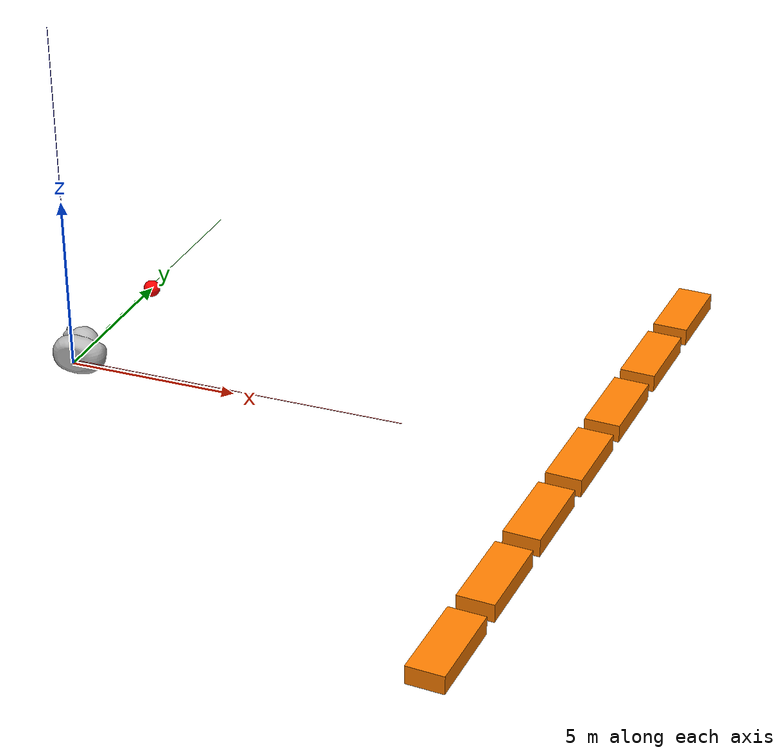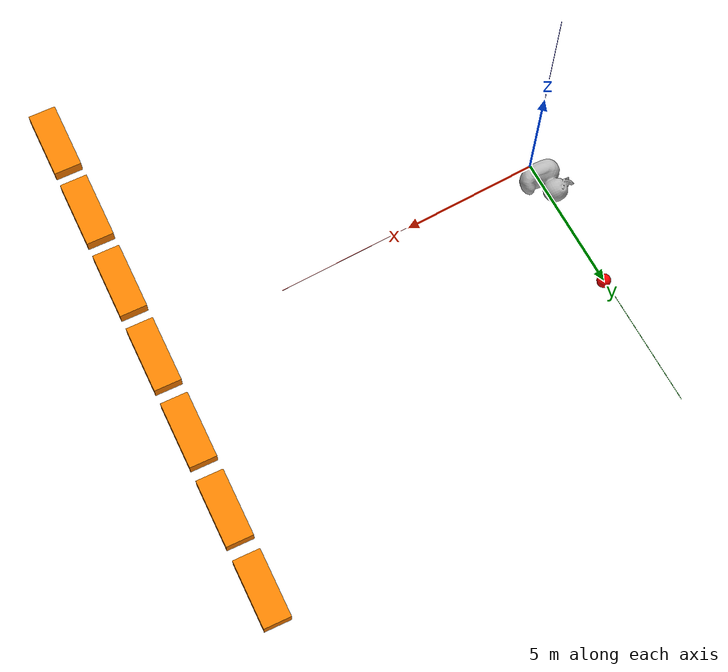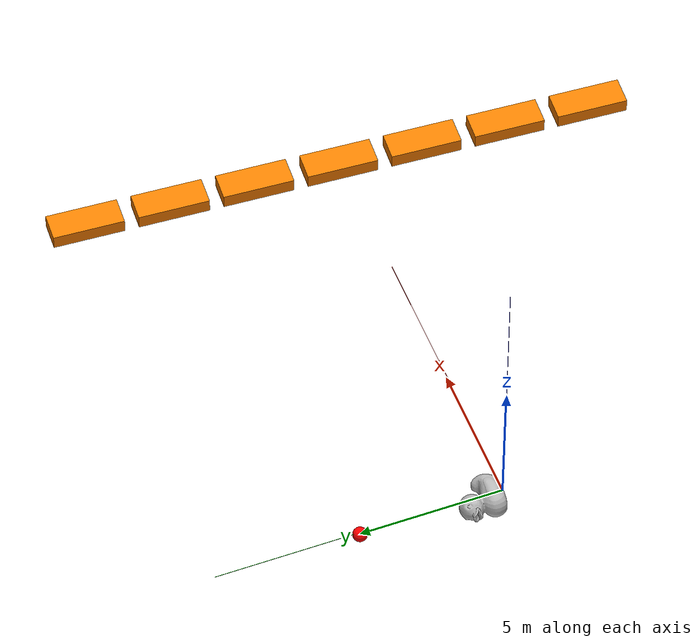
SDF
<sdf version="1.6">
 <world name="waves">
  <plugin filename="gz-sim-physics-system" name="gz::sim::systems::Physics"/>
  <plugin filename="gz-sim-sensors-system" name="gz::sim::systems::Sensors">
   <render_engine>ogre2</render_engine>
   <background_color>0.8 0.8 0.8</background_color>
  </plugin>
  <plugin filename="gz-sim-scene-broadcaster-system" name="gz::sim::systems::SceneBroadcaster"/>
  <plugin filename="gz-sim-user-commands-system" name="gz::sim::systems::UserCommands"/>
  <plugin filename="libgz-sim-imu-system.so" name="gz::sim::systems::Imu"/>
  <scene><ambient>1.0 1.0 1.0</ambient><background>0.8 0.8 0.8</background></scene>
  <light type="directional" name="sun">
   <pose>0 0 10 0 0 0</pose>
   <diffuse>0.8 0.8 0.8 1</diffuse>
   <specular>0.6 0.6 0.6 1</specular>
   <direction>-0.5 0.1 -0.9</direction>
  </light>
  <model name="axes">
   <static>1</static>
   <link name="link">
    <visual name="r">
     <cast_shadows>0</cast_shadows>
     <pose>5 0 0.1 0 0 0</pose>
     <geometry><box><size>10 0.01 0.01</size></box></geometry>
     <material>
      <ambient>1 0 0 1</ambient>
      <diffuse>1 0 0 1</diffuse>
      <emissive>1 0 0 1</emissive>
      <specular>0.5 0.5 0.5 1</specular>
     </material>
    </visual>
    <visual name="g">
     <cast_shadows>0</cast_shadows>
     <pose>0 5 0.1 0 0 0</pose>
     <geometry><box><size>0.01 10 0.01</size></box></geometry>
     <material>
      <ambient>0 1 0 1</ambient>
      <diffuse>0 1 0 1</diffuse>
      <emissive>0 1 0 1</emissive>
      <specular>0.5 0.5 0.5 1</specular>
     </material>
    </visual>
    <visual name="b">
     <cast_shadows>0</cast_shadows>
     <pose>0 0 5.1 0 0 0</pose>
     <geometry><box><size>0.01 0.01 10</size></box></geometry>
     <material>
      <ambient>0 0 1 1</ambient>
      <diffuse>0 0 1 1</diffuse>
      <emissive>0 0 1 1</emissive>
      <specular>0.5 0.5 0.5 1</specular>
     </material>
    </visual>
   </link>
  </model>
  <include><pose>0 0 0 0 0 3.14</pose><uri>model://duck</uri></include>
  <include><pose>0 5 0 0 0 0</pose><uri>model://spherical_buoy</uri></include>
  <include><pose>15 0 0 0 0 1.51</pose><uri>model://barrage</uri></include>
 </world>
</sdf>

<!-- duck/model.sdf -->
<sdf version='1.6'>
  <model name='duck'>
    <static>false</static>
    <plugin
        filename="gz-marine1-hydrodynamics-system"
        name="gz::sim::systems::Hydrodynamics">
    </plugin>
    <link name="base_link">
      <visual name="visual">
        <pose>0 0 0 1.5708 0 0</pose>
        <geometry>
          <mesh>
            <uri>model://duck/meshes/duck.dae</uri>
          </mesh>
        </geometry>
      </visual>
      <collision name="collision">
        <pose>0 0 0 0 0 0</pose>
        <geometry>
          <mesh>
            <uri>model://duck/meshes/duck_collision.stl</uri>
          </mesh>
        </geometry>
      </collision>
      <inertial>
        <pose>0 0 0 0 0 0</pose>
        <mass>400</mass>
        <inertia>
          <ixx>266</ixx>
          <ixy>0</ixy>
          <iyy>266</iyy>
          <iyz>0</iyz>
          <izz>266</izz>
        </inertia>
      </inertial>
    </link>
  </model>
</sdf>

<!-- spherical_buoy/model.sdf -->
<sdf version="1.6">
  <model name="spherical_buoy">
    <plugin
        filename="gz-marine1-hydrodynamics-system"
        name="gz::sim::systems::Hydrodynamics">
    </plugin>
    <link name="base_link">
      <visual name="visual">
        <geometry>
          <sphere>
            <radius>0.25</radius>
          </sphere>
        </geometry>
        <material>
          <ambient>1 0 0 1</ambient>
          <diffuse>1 0 0 1</diffuse>
          <specular>0.8 0.8 0.8 1</specular>
        </material>
      </visual>
      <collision name="collision">
        <geometry>
          <sphere>
            <radius>0.25</radius>
          </sphere>
        </geometry>
      </collision>
      <inertial>
        <mass>6.545</mass>
        <inertia>
          <ixx>0.1636</ixx>
          <ixy>0.0</ixy>
          <ixz>0.0</ixz>
          <iyy>0.1636</iyy>
          <iyz>0.0</iyz>
          <izz>0.1636</izz>
        </inertia>
      </inertial>
    </link>
  </model>
</sdf>

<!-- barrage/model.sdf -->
<sdf version="1.6">

  <model name="barrage">

    <include>
      <pose>0 0 0 0 0 0</pose>
      <uri>model://barrage_buoy</uri>
      <name>buoy0</name>
    </include>

    <include>
      <pose>-3.0 0 0 0 0 0</pose>
      <uri>model://barrage_buoy</uri>
      <name>buoy-1</name>
    </include>

    <include>
      <pose>3.0 0 0 0 0 0</pose>
      <uri>model://barrage_buoy</uri>
      <name>buoy+1</name>
    </include>

    <include>
      <pose>-6.0 0 0 0 0 0</pose>
      <uri>model://barrage_buoy</uri>
      <name>buoy-2</name>
    </include>

    <include>
      <pose>6.0 0 0 0 0 0</pose>
      <uri>model://barrage_buoy</uri>
      <name>buoy+2</name>
    </include>

    <include>
      <pose>-9.0 0 0 0 0 0</pose>
      <uri>model://barrage_buoy</uri>
      <name>buoy-3</name>
    </include>

    <include>
      <pose>9.0 0 0 0 0 0</pose>
      <uri>model://barrage_buoy</uri>
      <name>buoy+3</name>
    </include>

    <joint type="universal" name="buoy-1_joint">
      <pose>1.5 0 0 0 0 0</pose>
      <parent>buoy0::base_link</parent>
      <child>buoy-1::base_link</child>
      <axis>
        <xyz>0 1 0</xyz>
        <limit>
          <lower>-0.78539</lower>
          <upper>0.78539</upper>
        </limit>
      </axis>
      <axis2>
        <xyz>0 0 1</xyz>
        <limit>
          <lower>-0.78539</lower>
          <upper>0.78539</upper>
        </limit>
      </axis2>
    </joint>

    <joint type="universal" name="buoy+1_joint">
      <pose>-1.5 0 0 0 0 0</pose>
      <parent>buoy0::base_link</parent>
      <child>buoy+1::base_link</child>
      <axis>
        <xyz>0 1 0</xyz>
        <limit>
          <lower>-0.78539</lower>
          <upper>0.78539</upper>
        </limit>
      </axis>
      <axis2>
        <xyz>0 0 1</xyz>
        <limit>
          <lower>-0.78539</lower>
          <upper>0.78539</upper>
        </limit>
      </axis2>
    </joint>

    <joint type="universal" name="buoy-2_joint">
      <pose>1.5 0 0 0 0 0</pose>
      <parent>buoy-1::base_link</parent>
      <child>buoy-2::base_link</child>
      <axis>
        <xyz>0 1 0</xyz>
        <limit>
          <lower>-0.78539</lower>
          <upper>0.78539</upper>
        </limit>
      </axis>
      <axis2>
        <xyz>0 0 1</xyz>
        <limit>
          <lower>-0.78539</lower>
          <upper>0.78539</upper>
        </limit>
      </axis2>
    </joint>

    <joint type="universal" name="buoy+2_joint">
      <pose>-1.5 0 0 0 0 0</pose>
      <parent>buoy+1::base_link</parent>
      <child>buoy+2::base_link</child>
      <axis>
        <xyz>0 1 0</xyz>
        <limit>
          <lower>-0.78539</lower>
          <upper>0.78539</upper>
        </limit>
      </axis>
      <axis2>
        <xyz>0 0 1</xyz>
        <limit>
          <lower>-0.78539</lower>
          <upper>0.78539</upper>
        </limit>
      </axis2>
    </joint>

    <joint type="universal" name="buoy-3_joint">
      <pose>1.5 0 0 0 0 0</pose>
      <parent>buoy-2::base_link</parent>
      <child>buoy-3::base_link</child>
      <axis>
        <xyz>0 1 0</xyz>
        <limit>
          <lower>-0.78539</lower>
          <upper>0.78539</upper>
        </limit>
      </axis>
      <axis2>
        <xyz>0 0 1</xyz>
        <limit>
          <lower>-0.78539</lower>
          <upper>0.78539</upper>
        </limit>
      </axis2>
    </joint>

    <joint type="universal" name="buoy+3_joint">
      <pose>-1.5 0 0 0 0 0</pose>
      <parent>buoy+2::base_link</parent>
      <child>buoy+3::base_link</child>
      <axis>
        <xyz>0 1 0</xyz>
        <limit>
          <lower>-0.78539</lower>
          <upper>0.78539</upper>
        </limit>
      </axis>
      <axis2>
        <xyz>0 0 1</xyz>
        <limit>
          <lower>-0.78539</lower>
          <upper>0.78539</upper>
        </limit>
      </axis2>
    </joint>

  </model>
</sdf>

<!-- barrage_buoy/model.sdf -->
<sdf version="1.6">
  <model name="barrage_buoy">
    <plugin
        filename="gz-waves1-hydrodynamics-system"
        name="gz::sim::systems::Hydrodynamics">
    </plugin>
    <link name="base_link">
      <visual name="visual">
        <geometry>
          <box>
            <size>2.5 1 0.5</size>
          </box>
        </geometry>
        <material>
          <ambient>1.0 0.5 0.0 1.0</ambient>
          <diffuse>1.0 0.5 0.0 1.0</diffuse>
          <specular>0.8 0.8 0.8 1.0</specular>
        </material>
      </visual>
      <collision name="collision">
        <geometry>
          <box>
            <size>2.5 1 0.5</size>
          </box>
        </geometry>
      </collision>
      <inertial>
        <mass>312.5</mass>
        <inertia>
          <ixx>32.5</ixx>
          <ixy>0.0</ixy>
          <ixz>0.0</ixz>
          <iyy>169.3</iyy>
          <iyz>0.0</iyz>
          <izz>188.8</izz>
        </inertia>
      </inertial>
    </link>
  </model>
</sdf>
